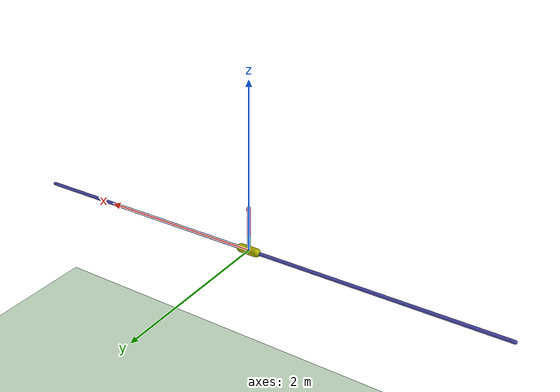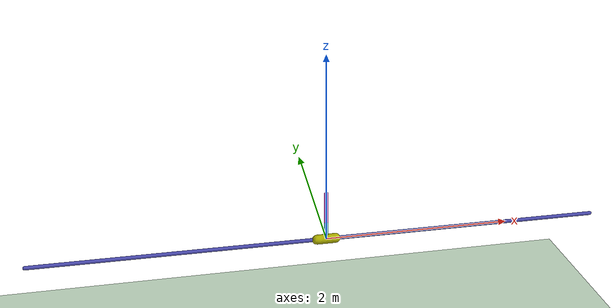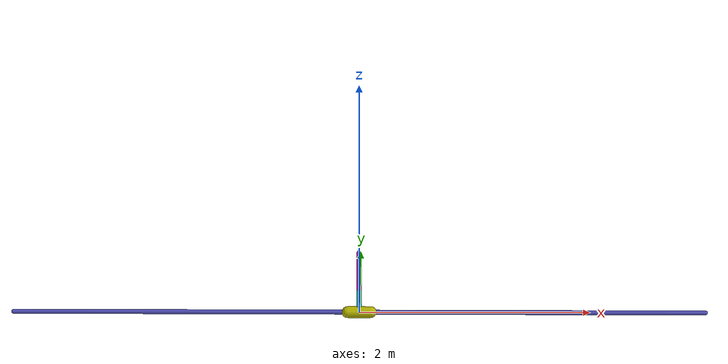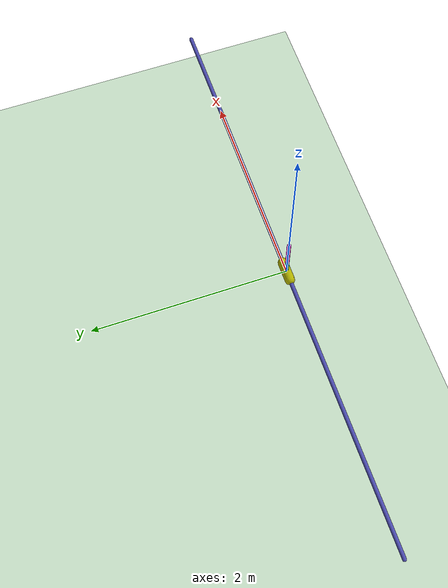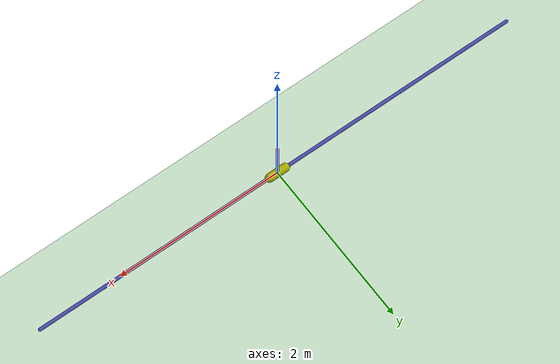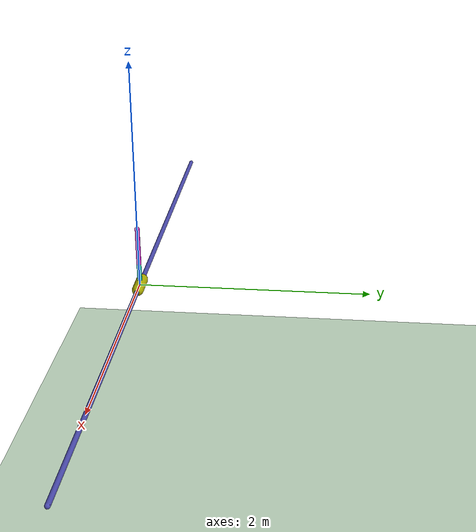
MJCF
<mujoco model="cartpole">
    <compiler coordinate="local" inertiafromgeom="true" />
    <custom>
        <numeric data="2" name="frame_skip" />
    </custom>
    <default>
        <joint damping="0.024" />
        <geom contype="0" friction="1 0.1 0.1" rgba="0.7 0.7 0 1" />
    </default>
    <option gravity="0 0 -9.81" integrator="RK4" timestep="0.01" />
    <size nstack="3000" />
    <worldbody>
        <geom name="floor" pos="0 0 -3.0" rgba="0.8 0.9 0.8 1" size="40 40 40" type="plane" />

        <!-- the rod -->
        <geom name="rail" pos="0 0 0" quat="0.707 0 0.707 0" rgba="0.3 0.3 0.7 1" size="0.02 3"
            type="capsule" />

        <!-- the cart -->
        <body name="cart" pos="0 0 0">
            <joint axis="1 0 0" limited="true" margin="0.01" name="slider" pos="0 0 0" range="-3 3"
                type="slide" />
            <geom name="cart" pos="0 0 0" quat="0.707 0 0.707 0" size="0.05 0.1" type="capsule" />

            <!-- the first pole -->
            <body name="pole" pos="0 0 0">
                <joint axis="0 1 0" name="hinge" pos="0 0 0" type="hinge" />
                <geom fromto="0 0 0 0 0 0.2" name="cpole" rgba="0 0.7 0.7 1" size="0.02 0.1"
                    type="capsule" />

                <!-- the second pole -->
                <body name="pole2" pos="0 0 0.2">
                    <joint axis="0 1 0" name="hinge2" pos="0 0 0" type="hinge" />
                    <geom fromto="0 0 0 0 0 0.3365" name="cpole2" rgba="0.7 0 0.7 1"
                        size="0.02 0.16825" type="capsule" />
                    <site name="tip" pos="0 0 0.3365" size="0.01 0.01" />
                </body>
            </body>
        </body>
    </worldbody>
    <actuator>
        <motor ctrllimited="true" ctrlrange="-1 1" gear="500" joint="slider" name="slide" />
    </actuator>
</mujoco>
